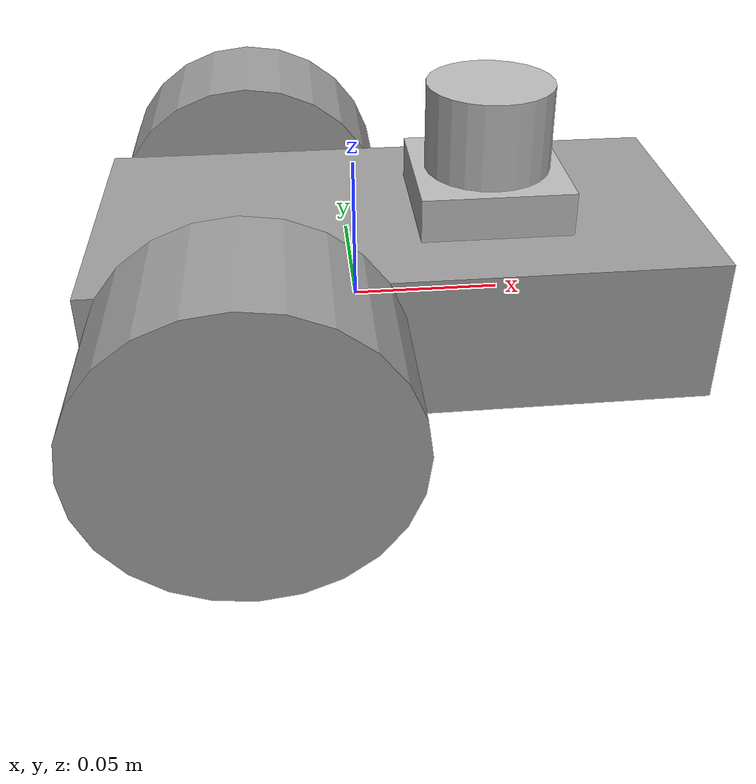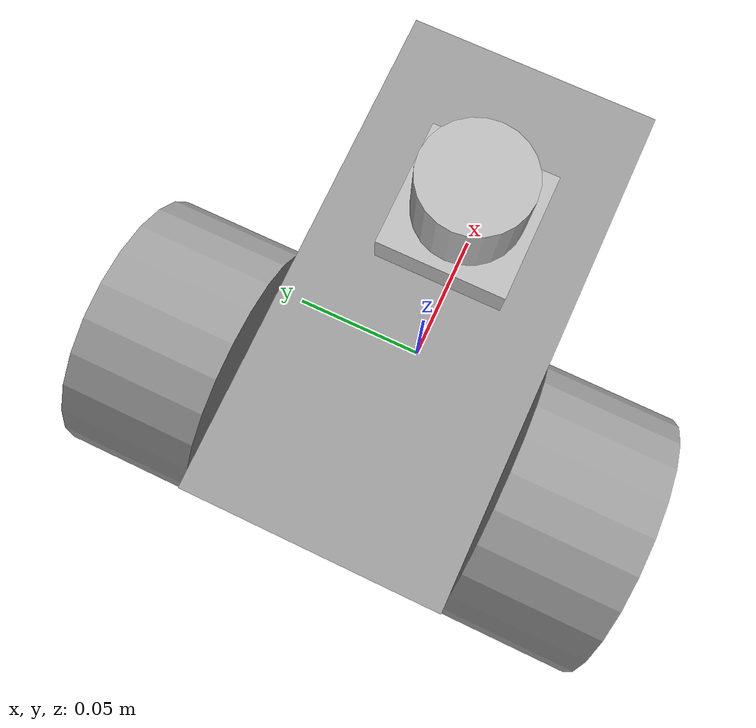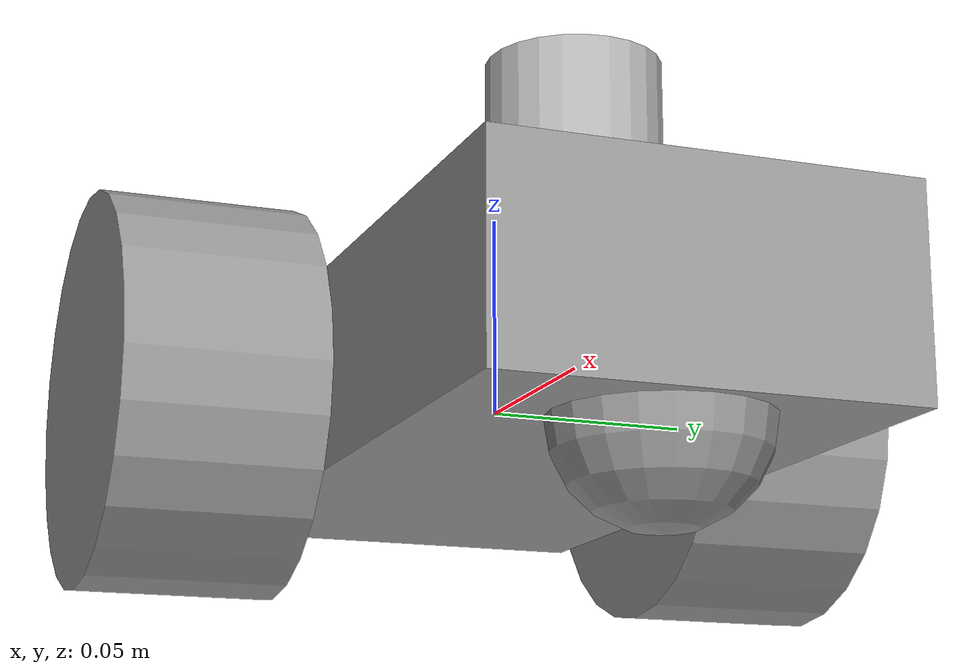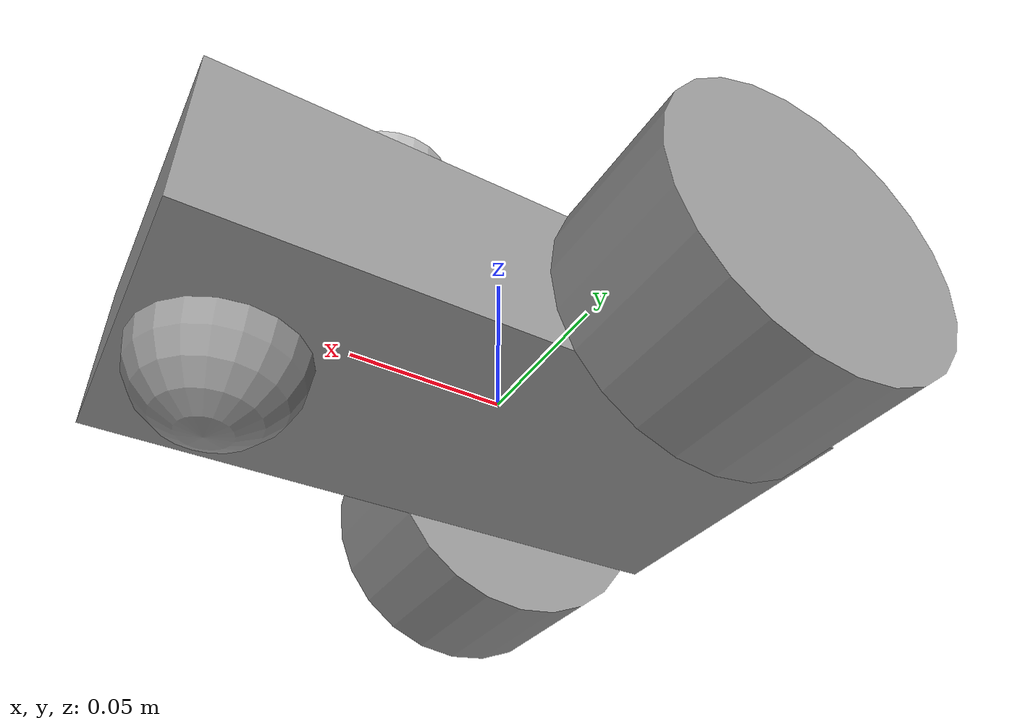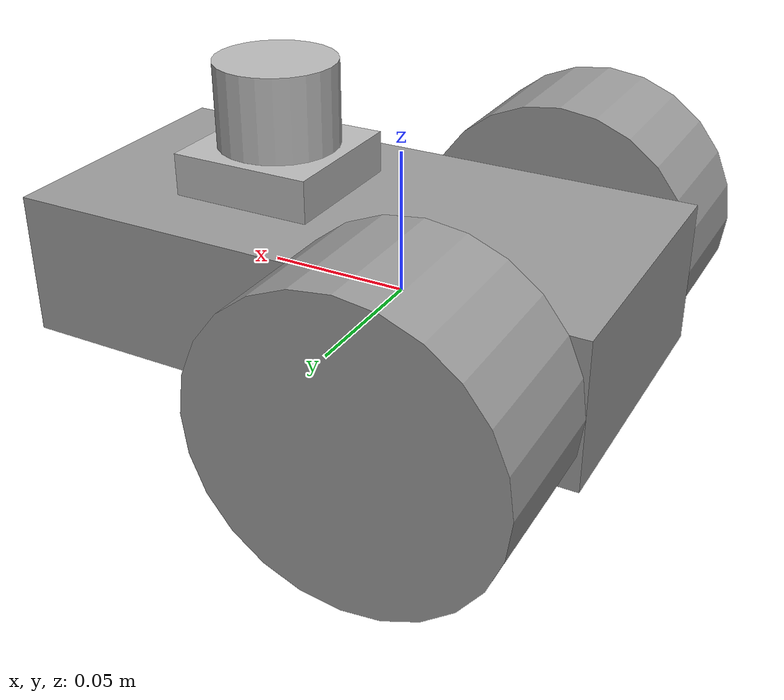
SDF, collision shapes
<?xml version='1.0'?>
<sdf version='1.7'>
  <model name='robotTask1'>
    <link name='link_1'>
      <inertial>
        <mass>1</mass>
        <inertia>
          <ixx>0.166667</ixx>
          <ixy>0</ixy>
          <ixz>0</ixz>
          <iyy>0.166667</iyy>
          <iyz>0</iyz>
          <izz>0.166667</izz>
        </inertia>
        <pose>0 0 0 0 -0 0</pose>
      </inertial>
      <pose>0.01425 0.00375 0.00625 0 -0 0</pose>
      <gravity>1</gravity>
      <self_collide>0</self_collide>
      <kinematic>0</kinematic>
      <enable_wind>0</enable_wind>
      <visual name='visual'>
        <pose>0 0 0 0 -0 0</pose>
        <geometry>
          <box>
            <size>0.2 0.1 0.05</size>
          </box>
        </geometry>
        <material>
          <lighting>1</lighting>
          <script>
            <uri>file://media/materials/scripts/gazebo.material</uri>
            <name>Gazebo/Grey</name>
          </script>
          <shader type='pixel'>
            <normal_map>__default__</normal_map>
          </shader>
          <ambient>1 1 1 1</ambient>
          <diffuse>1 1 1 1</diffuse>
          <specular>1 1 1 1</specular>
          <emissive>1 1 1 1</emissive>
        </material>
        <transparency>0</transparency>
        <cast_shadows>1</cast_shadows>
      </visual>
      <collision name='collision'>
        <laser_retro>0</laser_retro>
        <max_contacts>10</max_contacts>
        <pose>0 0 0 0 -0 0</pose>
        <geometry>
          <box>
            <size>0.2 0.1 0.05</size>
          </box>
        </geometry>
        <surface>
          <friction>
            <ode>
              <mu>1</mu>
              <mu2>1</mu2>
              <fdir1>0 0 0</fdir1>
              <slip1>0</slip1>
              <slip2>0</slip2>
            </ode>
            <torsional>
              <coefficient>1</coefficient>
              <patch_radius>0</patch_radius>
              <surface_radius>0</surface_radius>
              <use_patch_radius>1</use_patch_radius>
              <ode>
                <slip>0</slip>
              </ode>
            </torsional>
          </friction>
          <bounce>
            <restitution_coefficient>0</restitution_coefficient>
            <threshold>1e+06</threshold>
          </bounce>
          <contact>
            <collide_without_contact>0</collide_without_contact>
            <collide_without_contact_bitmask>1</collide_without_contact_bitmask>
            <collide_bitmask>1</collide_bitmask>
            <ode>
              <soft_cfm>0</soft_cfm>
              <soft_erp>0.2</soft_erp>
              <kp>1e+13</kp>
              <kd>1</kd>
              <max_vel>0.01</max_vel>
              <min_depth>0</min_depth>
            </ode>
            <bullet>
              <split_impulse>1</split_impulse>
              <split_impulse_penetration_threshold>-0.01</split_impulse_penetration_threshold>
              <soft_cfm>0</soft_cfm>
              <soft_erp>0.2</soft_erp>
              <kp>1e+13</kp>
              <kd>1</kd>
            </bullet>
          </contact>
        </surface>
      </collision>
    </link>
    <link name='link_3'>
      <inertial>
        <mass>1</mass>
        <inertia>
          <ixx>0.145833</ixx>
          <ixy>0</ixy>
          <ixz>0</ixz>
          <iyy>0.145833</iyy>
          <iyz>0</iyz>
          <izz>0.125</izz>
        </inertia>
        <pose>0 0 0 0 -0 0</pose>
      </inertial>
      <pose>-0.03575 -0.071245 0.00625 1.5707 -0 0</pose>
      <gravity>1</gravity>
      <self_collide>0</self_collide>
      <kinematic>0</kinematic>
      <enable_wind>0</enable_wind>
      <visual name='visual'>
        <pose>0 0 0 0 -0 0</pose>
        <geometry>
          <cylinder>
            <radius>0.05</radius>
            <length>0.05</length>
          </cylinder>
        </geometry>
        <material>
          <lighting>1</lighting>
          <script>
            <uri>file://media/materials/scripts/gazebo.material</uri>
            <name>Gazebo/Grey</name>
          </script>
          <shader type='pixel'>
            <normal_map>__default__</normal_map>
          </shader>
          <ambient>0 0 0 1</ambient>
          <diffuse>0 0 0 1</diffuse>
          <specular>0 0 0 1</specular>
          <emissive>0 0 0 1</emissive>
        </material>
        <transparency>0</transparency>
        <cast_shadows>1</cast_shadows>
      </visual>
      <collision name='collision'>
        <laser_retro>0</laser_retro>
        <max_contacts>10</max_contacts>
        <pose>0 0 0 0 -0 0</pose>
        <geometry>
          <cylinder>
            <radius>0.05</radius>
            <length>0.05</length>
          </cylinder>
        </geometry>
        <surface>
          <friction>
            <ode>
              <mu>1</mu>
              <mu2>1</mu2>
              <fdir1>0 0 0</fdir1>
              <slip1>0</slip1>
              <slip2>0</slip2>
            </ode>
            <torsional>
              <coefficient>1</coefficient>
              <patch_radius>0</patch_radius>
              <surface_radius>0</surface_radius>
              <use_patch_radius>1</use_patch_radius>
              <ode>
                <slip>0</slip>
              </ode>
            </torsional>
          </friction>
          <bounce>
            <restitution_coefficient>0</restitution_coefficient>
            <threshold>1e+06</threshold>
          </bounce>
          <contact>
            <collide_without_contact>0</collide_without_contact>
            <collide_without_contact_bitmask>1</collide_without_contact_bitmask>
            <collide_bitmask>1</collide_bitmask>
            <ode>
              <soft_cfm>0</soft_cfm>
              <soft_erp>0.2</soft_erp>
              <kp>1e+13</kp>
              <kd>1</kd>
              <max_vel>0.01</max_vel>
              <min_depth>0</min_depth>
            </ode>
            <bullet>
              <split_impulse>1</split_impulse>
              <split_impulse_penetration_threshold>-0.01</split_impulse_penetration_threshold>
              <soft_cfm>0</soft_cfm>
              <soft_erp>0.2</soft_erp>
              <kp>1e+13</kp>
              <kd>1</kd>
            </bullet>
          </contact>
        </surface>
      </collision>
    </link>
    <link name='link_3_clone'>
      <inertial>
        <mass>1</mass>
        <inertia>
          <ixx>0.145833</ixx>
          <ixy>0</ixy>
          <ixz>0</ixz>
          <iyy>0.145833</iyy>
          <iyz>0</iyz>
          <izz>0.125</izz>
        </inertia>
        <pose>0 0 0 0 -0 0</pose>
      </inertial>
      <pose>-0.03575 0.078745 0.00625 1.5707 -0 0</pose>
      <gravity>1</gravity>
      <self_collide>0</self_collide>
      <kinematic>0</kinematic>
      <enable_wind>0</enable_wind>
      <visual name='visual'>
        <pose>0 0 0 0 -0 0</pose>
        <geometry>
          <cylinder>
            <radius>0.05</radius>
            <length>0.05</length>
          </cylinder>
        </geometry>
        <material>
          <lighting>1</lighting>
          <script>
            <uri>file://media/materials/scripts/gazebo.material</uri>
            <name>Gazebo/Grey</name>
          </script>
          <shader type='pixel'>
            <normal_map>__default__</normal_map>
          </shader>
          <ambient>0 0 0 1</ambient>
          <diffuse>0 0 0 1</diffuse>
          <specular>0 0 0 1</specular>
          <emissive>0 0 0 1</emissive>
        </material>
        <transparency>0</transparency>
        <cast_shadows>1</cast_shadows>
      </visual>
      <collision name='collision'>
        <laser_retro>0</laser_retro>
        <max_contacts>10</max_contacts>
        <pose>0 0 0 0 -0 0</pose>
        <geometry>
          <cylinder>
            <radius>0.05</radius>
            <length>0.05</length>
          </cylinder>
        </geometry>
        <surface>
          <friction>
            <ode>
              <mu>1</mu>
              <mu2>1</mu2>
              <fdir1>0 0 0</fdir1>
              <slip1>0</slip1>
              <slip2>0</slip2>
            </ode>
            <torsional>
              <coefficient>1</coefficient>
              <patch_radius>0</patch_radius>
              <surface_radius>0</surface_radius>
              <use_patch_radius>1</use_patch_radius>
              <ode>
                <slip>0</slip>
              </ode>
            </torsional>
          </friction>
          <bounce>
            <restitution_coefficient>0</restitution_coefficient>
            <threshold>1e+06</threshold>
          </bounce>
          <contact>
            <collide_without_contact>0</collide_without_contact>
            <collide_without_contact_bitmask>1</collide_without_contact_bitmask>
            <collide_bitmask>1</collide_bitmask>
            <ode>
              <soft_cfm>0</soft_cfm>
              <soft_erp>0.2</soft_erp>
              <kp>1e+13</kp>
              <kd>1</kd>
              <max_vel>0.01</max_vel>
              <min_depth>0</min_depth>
            </ode>
            <bullet>
              <split_impulse>1</split_impulse>
              <split_impulse_penetration_threshold>-0.01</split_impulse_penetration_threshold>
              <soft_cfm>0</soft_cfm>
              <soft_erp>0.2</soft_erp>
              <kp>1e+13</kp>
              <kd>1</kd>
            </bullet>
          </contact>
        </surface>
      </collision>
    </link>
    <link name='link_4'>
      <inertial>
        <mass>1</mass>
        <inertia>
          <ixx>0.1</ixx>
          <ixy>0</ixy>
          <ixz>0</ixz>
          <iyy>0.1</iyy>
          <iyz>0</iyz>
          <izz>0.1</izz>
        </inertia>
        <pose>0 0 0 0 -0 0</pose>
      </inertial>
      <pose>0.08675 0.00375 -0.01875 0 -0 0</pose>
      <gravity>1</gravity>
      <self_collide>0</self_collide>
      <kinematic>0</kinematic>
      <enable_wind>0</enable_wind>
      <visual name='visual'>
        <pose>0 0 0 0 -0 0</pose>
        <geometry>
          <sphere>
            <radius>0.025</radius>
          </sphere>
        </geometry>
        <material>
          <lighting>1</lighting>
          <script>
            <uri>file://media/materials/scripts/gazebo.material</uri>
            <name>Gazebo/Grey</name>
          </script>
          <shader type='pixel'>
            <normal_map>__default__</normal_map>
          </shader>
          <ambient>0 0 0 1</ambient>
          <diffuse>0 0 0 1</diffuse>
          <specular>0 0 0 1</specular>
          <emissive>0 0 0 1</emissive>
        </material>
        <transparency>0</transparency>
        <cast_shadows>1</cast_shadows>
      </visual>
      <collision name='collision'>
        <laser_retro>0</laser_retro>
        <max_contacts>10</max_contacts>
        <pose>0 0 0 0 -0 0</pose>
        <geometry>
          <sphere>
            <radius>0.025</radius>
          </sphere>
        </geometry>
        <surface>
          <friction>
            <ode>
              <mu>1</mu>
              <mu2>1</mu2>
              <fdir1>0 0 0</fdir1>
              <slip1>0</slip1>
              <slip2>0</slip2>
            </ode>
            <torsional>
              <coefficient>1</coefficient>
              <patch_radius>0</patch_radius>
              <surface_radius>0</surface_radius>
              <use_patch_radius>1</use_patch_radius>
              <ode>
                <slip>0</slip>
              </ode>
            </torsional>
          </friction>
          <bounce>
            <restitution_coefficient>0</restitution_coefficient>
            <threshold>1e+06</threshold>
          </bounce>
          <contact>
            <collide_without_contact>0</collide_without_contact>
            <collide_without_contact_bitmask>1</collide_without_contact_bitmask>
            <collide_bitmask>1</collide_bitmask>
            <ode>
              <soft_cfm>0</soft_cfm>
              <soft_erp>0.2</soft_erp>
              <kp>1e+13</kp>
              <kd>1</kd>
              <max_vel>0.01</max_vel>
              <min_depth>0</min_depth>
            </ode>
            <bullet>
              <split_impulse>1</split_impulse>
              <split_impulse_penetration_threshold>-0.01</split_impulse_penetration_threshold>
              <soft_cfm>0</soft_cfm>
              <soft_erp>0.2</soft_erp>
              <kp>1e+13</kp>
              <kd>1</kd>
            </bullet>
          </contact>
        </surface>
      </collision>
    </link>
    <joint name='Left_Wheel_Joint' type='revolute'>
      <parent>link_1</parent>
      <child>link_3_clone</child>
      <pose>0 0 0 0 -0 0</pose>
      <axis>
        <xyz>0 0 1</xyz>
        <limit>
          <lower>-1.79769e+308</lower>
          <upper>1.79769e+308</upper>
          <effort>-1</effort>
          <velocity>-1</velocity>
        </limit>
        <dynamics>
          <spring_reference>0</spring_reference>
          <spring_stiffness>0</spring_stiffness>
          <damping>0</damping>
          <friction>0</friction>
        </dynamics>
      </axis>
      <physics>
        <ode>
          <limit>
            <cfm>0</cfm>
            <erp>0.2</erp>
          </limit>
          <suspension>
            <cfm>0</cfm>
            <erp>0.2</erp>
          </suspension>
        </ode>
      </physics>
    </joint>
    <joint name='Right_Wheel_Joint' type='revolute'>
      <parent>link_1</parent>
      <child>link_3</child>
      <pose>0 0 0 0 -0 0</pose>
      <axis>
        <xyz>0 0 1</xyz>
        <limit>
          <lower>-1.79769e+308</lower>
          <upper>1.79769e+308</upper>
          <effort>-1</effort>
          <velocity>-1</velocity>
        </limit>
        <dynamics>
          <spring_reference>0</spring_reference>
          <spring_stiffness>0</spring_stiffness>
          <damping>0</damping>
          <friction>0</friction>
        </dynamics>
      </axis>
      <physics>
        <ode>
          <limit>
            <cfm>0</cfm>
            <erp>0.2</erp>
          </limit>
          <suspension>
            <cfm>0</cfm>
            <erp>0.2</erp>
          </suspension>
        </ode>
      </physics>
    </joint>
    <joint name='Ball_Joint' type='ball'>
      <parent>link_1</parent>
      <child>link_4</child>
      <pose>0 0 0 0 -0 0</pose>
      <physics>
        <ode>
          <limit>
            <cfm>0</cfm>
            <erp>0.2</erp>
          </limit>
          <suspension>
            <cfm>0</cfm>
            <erp>0.2</erp>
          </suspension>
        </ode>
      </physics>
    </joint>

    <static>0</static>
    <allow_auto_disable>1</allow_auto_disable>
    <plugin name='gazebo_ros_diff_drive' filename='libgazebo_ros_diff_drive.so'>

		<!-- Update rate in Hz -->
		<update_rate>50</update_rate>

		<!-- wheels -->
		<left_joint>Left_Wheel_Joint</left_joint>
		<right_joint>Right_Wheel_Joint</right_joint>

		<!-- kinematics -->
		<wheel_separation>1.25</wheel_separation>
		<wheel_diameter>0.6</wheel_diameter>

		<!-- limits -->
		<max_wheel_torque>20</max_wheel_torque>
		<max_wheel_acceleration>1.0</max_wheel_acceleration>

		<!-- input -->
		<command_topic>cmd_vel</command_topic>

		<!-- output -->
		<publish_odom>true</publish_odom>
		<publish_odom_tf>true</publish_odom_tf>
		<publish_wheel_tf>true</publish_wheel_tf>

		<odometry_topic>odom</odometry_topic>
		<odometry_frame>odom</odometry_frame>
		<robot_base_frame>link_1</robot_base_frame>
	</plugin>

	<include>
		<uri>model://hokuyo</uri>
		<pose>0.045 0.00275 0.04 0 -0 0</pose>
	</include>
	<joint name="hokuyo_joint" type="fixed">
		<child>hokuyo::link</child>
		<parent>link_1</parent>
	</joint>
  </model>
</sdf>

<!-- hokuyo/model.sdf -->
<sdf version="1.5">
  <model name="hokuyo">
    <pose>0 0 0.035 0 0 0</pose>
    <link name="link">
      <inertial>
        <mass>0.1</mass>
      </inertial>
      <visual name="visual">
        <geometry>
          <mesh>
            <uri>model://../model_source/models/hokuyo/meshes/hokuyo.dae</uri>
          </mesh>
        </geometry>
      </visual>
      <collision name="collision-base">
        <pose>0 0 -0.0145 0 0 0</pose>
        <geometry>
          <box>
            <size>0.05 0.05 0.041</size>
          </box>
        </geometry>
      </collision>
      <collision name="collision-top">
        <pose>0 0 0.0205 0 0 0</pose>
        <geometry>
          <cylinder>
            <radius>0.021</radius>
            <length>0.029</length>
          </cylinder>
        </geometry>
      </collision>
      <sensor name="laser" type="ray">
        <pose>0.01 0 0.0175 0 -0 0</pose>
        <ray>
          <scan>
            <horizontal>
              <samples>640</samples>
              <resolution>1</resolution>
              <min_angle>-2.26889</min_angle>
              <max_angle>2.268899</max_angle>
            </horizontal>
          </scan>
          <range>
            <min>0.08</min>
            <max>10</max>
            <resolution>0.01</resolution>
          </range>
        </ray>
        <plugin name="laser" filename="libRayPlugin.so" />
        <always_on>1</always_on>
        <update_rate>30</update_rate>
        <visualize>true</visualize>
      </sensor>
    </link>
  </model>
</sdf>
